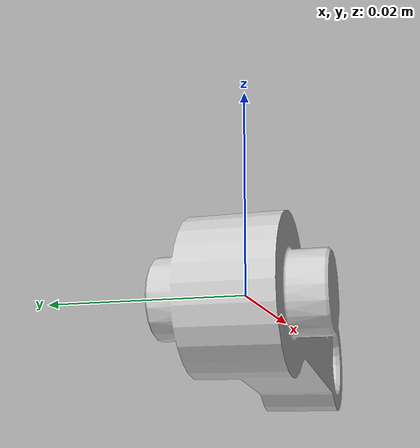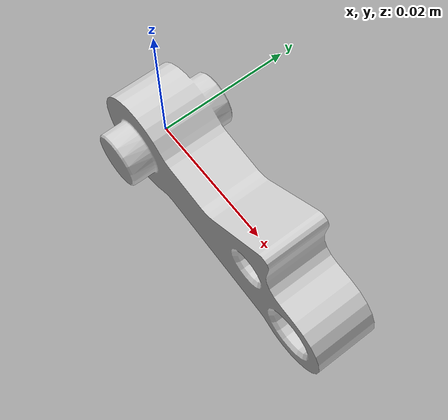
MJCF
<mujoco model="left_knuckle">
  <default>
    <default class="visual">
      <geom group="2" type="mesh" contype="0" conaffinity="0"/>
    </default>
    <default class="collision">
      <geom group="3" type="mesh"/>
    </default>
  </default>
  <asset>
    <material name="grey.001" specular="0.5" shininess="0.25" rgba="0.799103 0.799103 0.799103 1.000000"/>
    <mesh file="left_knuckle.obj"/>
  </asset>
  <worldbody>
    <body name="left_knuckle">
      <geom material="grey.001" mesh="left_knuckle" class="visual"/>
      <geom mesh="left_knuckle" class="collision"/>
    </body>
  </worldbody>
</mujoco>
